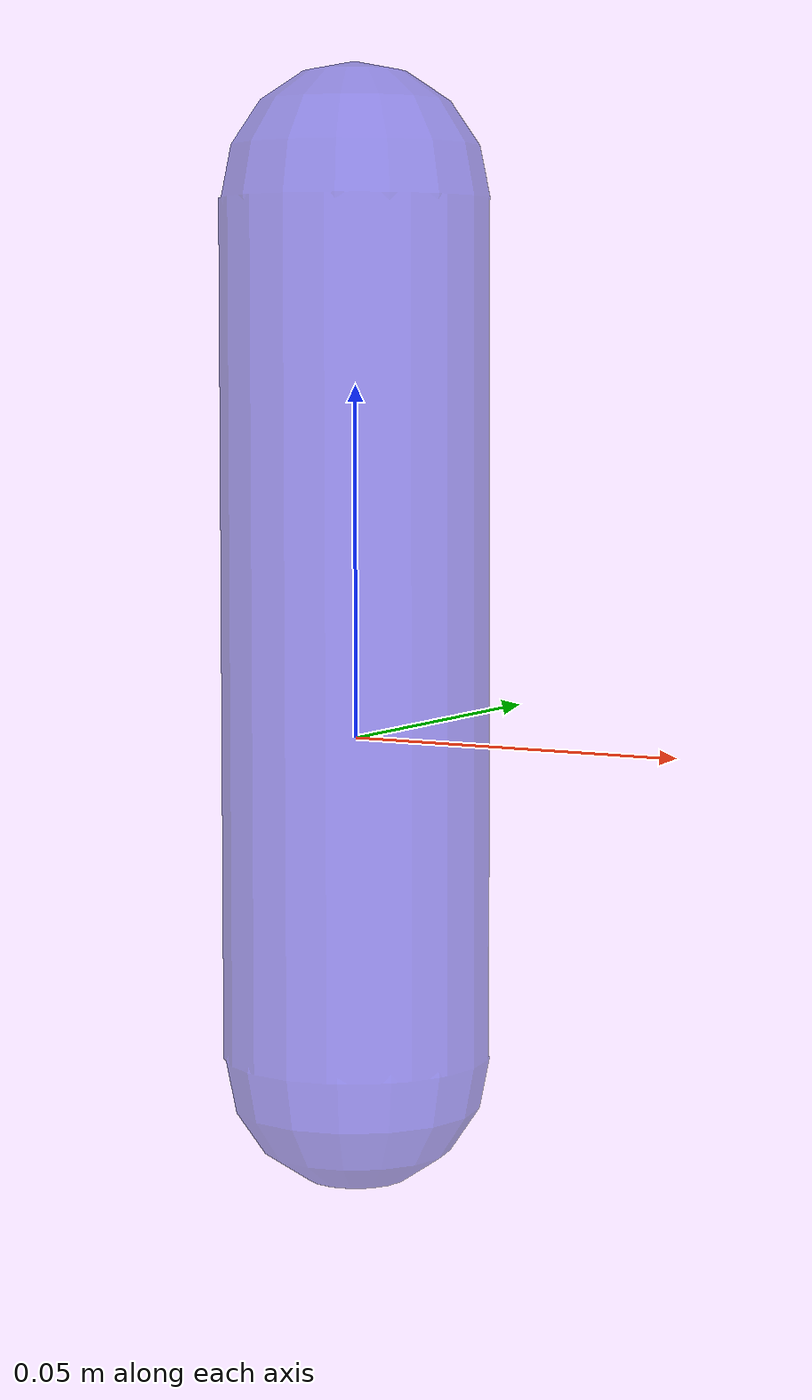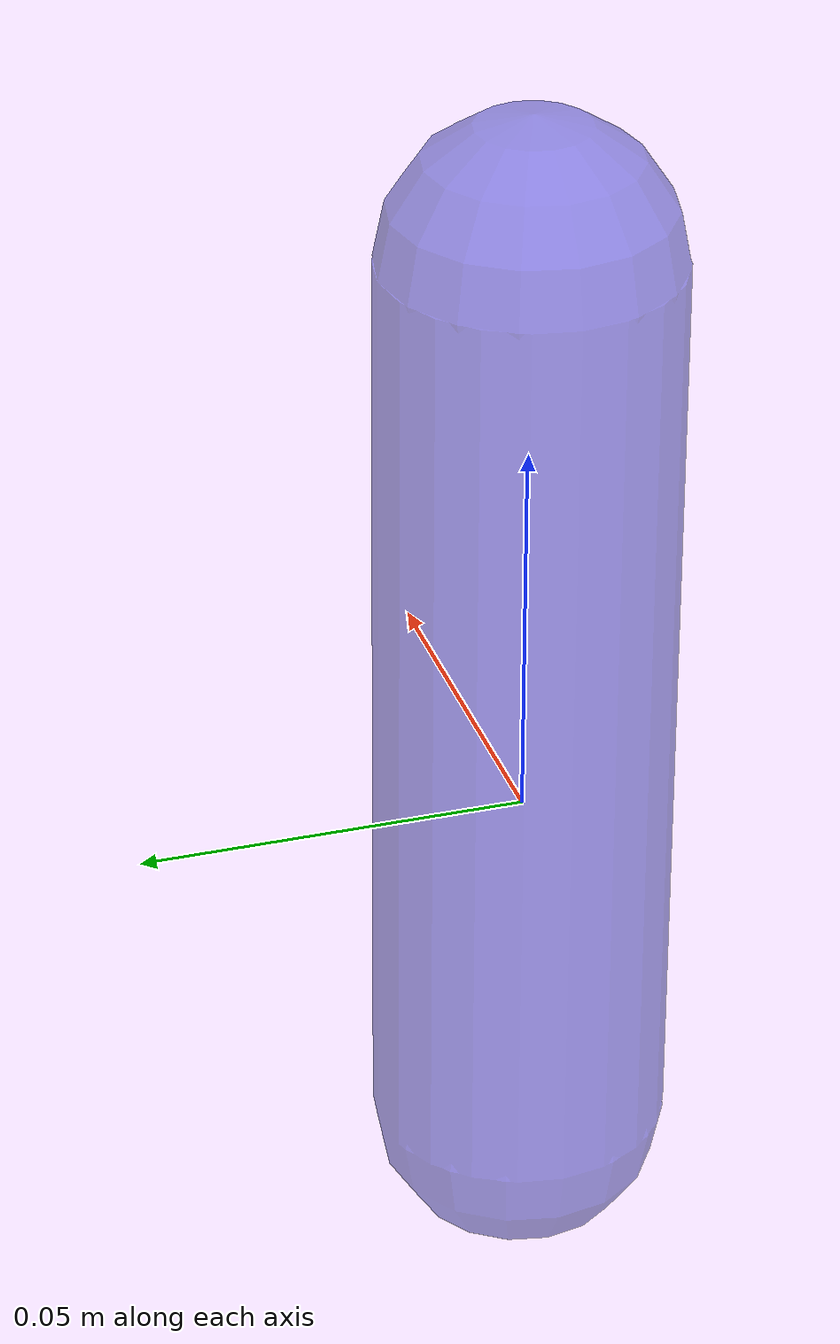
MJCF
<mujoco model="bottle">
  <asset>
    <mesh file="meshes/bottle.stl" name="bottle_mesh"/>
    <texture type="skybox" file="../textures/glass.png" name="tex-glass"/>
    <material name="glass" reflectance="0.5" texrepeat="5 5" texture="tex-glass" texuniform="true"/>
  </asset>
  <worldbody>
    <body>
      <body name="object">
        <geom pos="0.000000 -0.000000 0.015142" type="capsule" solimp="0.998 0.998 0.001" solref="0.001 1" density="50" friction="0.95 0.3 0.1" material="glass" contype="0" conaffinity="0" group="1" quat="0.000000 0.000000 1.000000 0.000000" size="0.019089 0.060912" rgba="0.2 0.2 0.8 0.5"/>
        <geom pos="0.000000 -0.000000 0.015142" type="capsule" solimp="0.998 0.998 0.001" solref="0.001 1" density="50" friction="0.95 0.3 0.1" material="glass" group="0" quat="0.000000 0.000000 1.000000 0.000000" size="0.019089 0.060912" rgba="0.2 0.2 0.8 0.5"/>
      </body>
      <site rgba="0 0 0 0" size="0.005" pos="0 0 -0.082" name="bottom_site"/>
      <site rgba="0 0 0 0" size="0.005" pos="0 0 0.075" name="top_site"/>
      <site rgba="0 0 0 0" size="0.005" pos="0.0254 0.0254 0" name="horizontal_radius_site"/>
    </body>
  </worldbody>
</mujoco>
